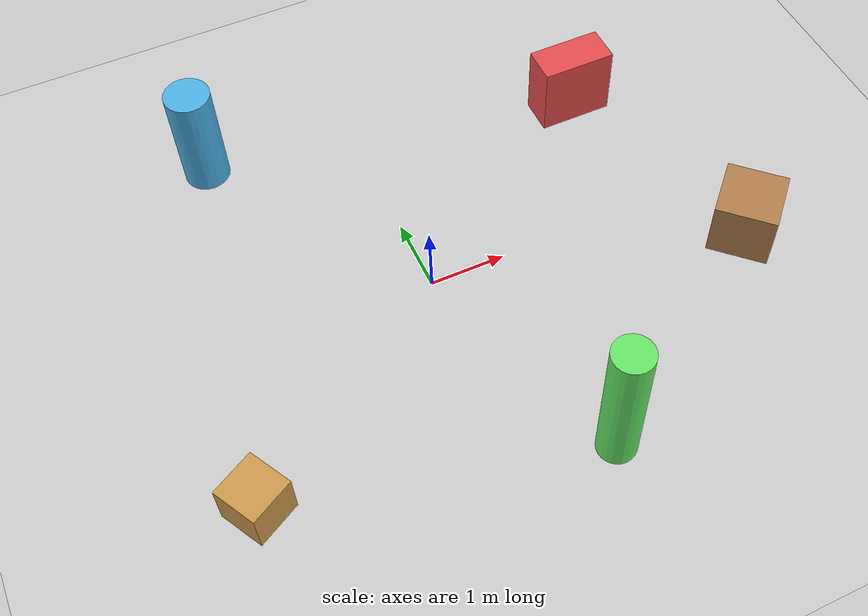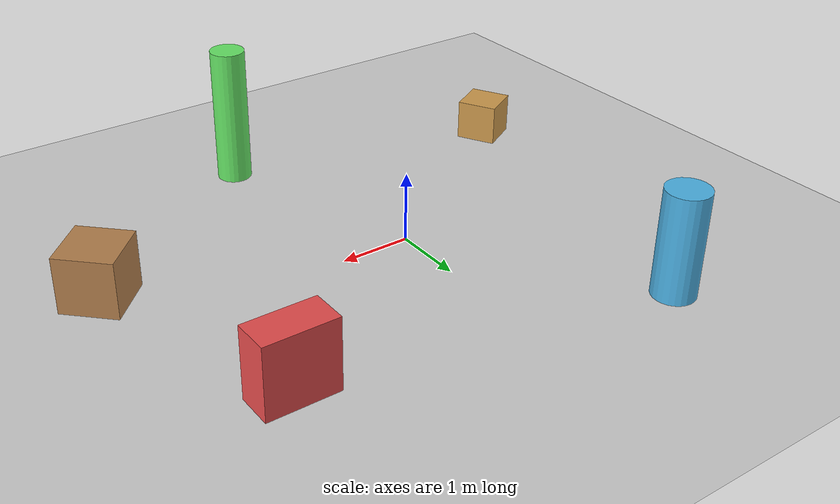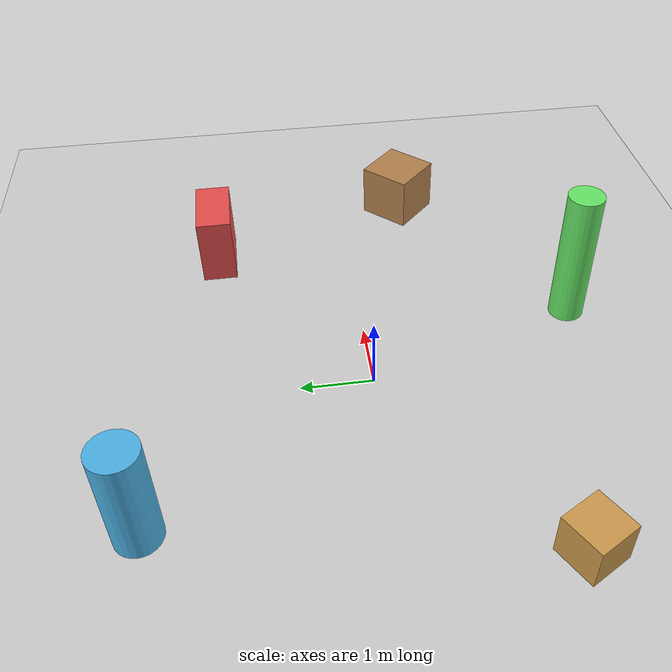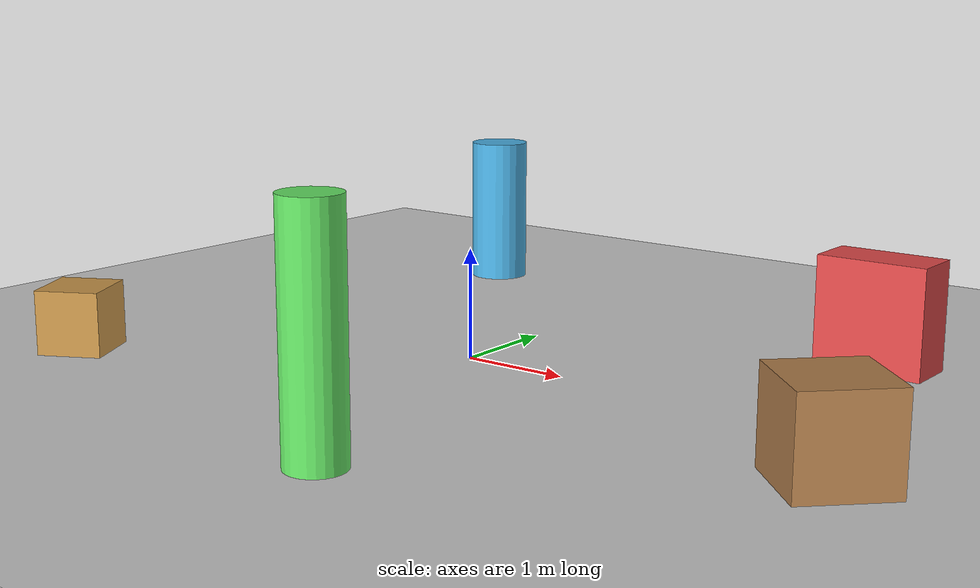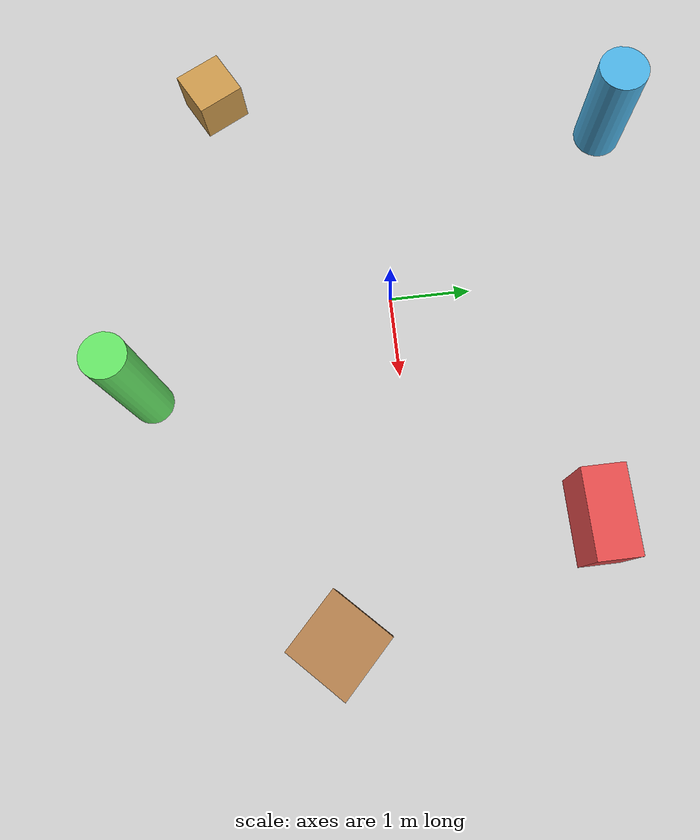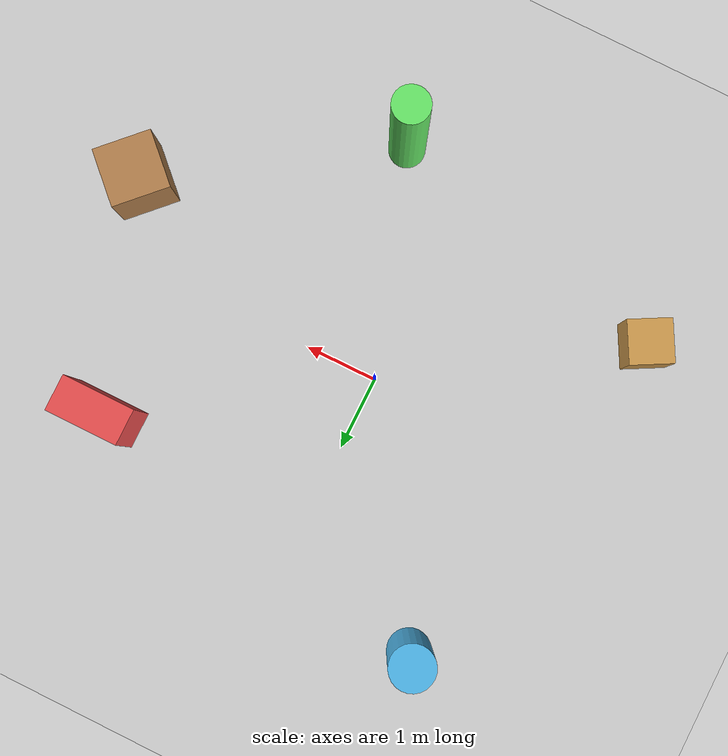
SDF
<sdf version="1.6">
 <world name="default">
  <include><uri>model://sun</uri></include>
  <include><uri>model://ground_plane</uri></include>
  <model name="obstacle_box_1">
   <static>true</static>
   <pose>3 2 0.5 0 0 0</pose>
   <link name="link">
    <collision name="collision"><geometry><box><size>1.0 0.5 1.0</size></box></geometry></collision>
    <visual name="visual">
     <geometry><box><size>1.0 0.5 1.0</size></box></geometry>
     <material><ambient>0.8 0.2 0.2 1</ambient><diffuse>0.9 0.3 0.3 1</diffuse></material>
    </visual>
   </link>
  </model>
  <model name="obstacle_cylinder_1">
   <static>true</static>
   <pose>-2 3 0.75 0 0 0</pose>
   <link name="link">
    <collision name="collision">
     <geometry><cylinder><radius>0.3</radius><length>1.5</length></cylinder></geometry>
    </collision>
    <visual name="visual">
     <geometry><cylinder><radius>0.3</radius><length>1.5</length></cylinder></geometry>
     <material><ambient>0.2 0.6 0.8 1</ambient><diffuse>0.3 0.7 0.9 1</diffuse></material>
    </visual>
   </link>
  </model>
  <model name="obstacle_box_2">
   <static>true</static>
   <pose>-3 -2 0.3 0 0 0.5</pose>
   <link name="link">
    <collision name="collision"><geometry><box><size>0.6 0.6 0.6</size></box></geometry></collision>
    <visual name="visual">
     <geometry><box><size>0.6 0.6 0.6</size></box></geometry>
     <material><ambient>0.7 0.5 0.2 1</ambient><diffuse>0.8 0.6 0.3 1</diffuse></material>
    </visual>
   </link>
  </model>
  <model name="obstacle_cylinder_2">
   <static>true</static>
   <pose>1 -3 1.0 0 0 0</pose>
   <link name="link">
    <collision name="collision">
     <geometry><cylinder><radius>0.25</radius><length>2.0</length></cylinder></geometry>
    </collision>
    <visual name="visual">
     <geometry><cylinder><radius>0.25</radius><length>2.0</length></cylinder></geometry>
     <material><ambient>0.3 0.8 0.3 1</ambient><diffuse>0.4 0.9 0.4 1</diffuse></material>
    </visual>
   </link>
  </model>
  <model name="obstacle_box_3">
   <static>true</static>
   <pose>4 -1 0.4 0 0 0.8</pose>
   <link name="link">
    <collision name="collision"><geometry><box><size>0.8 0.8 0.8</size></box></geometry></collision>
    <visual name="visual">
     <geometry><box><size>0.8 0.8 0.8</size></box></geometry>
     <material><ambient>0.6 0.4 0.2 1</ambient><diffuse>0.7 0.5 0.3 1</diffuse></material>
    </visual>
   </link>
  </model>
  <physics type="ode">
   <max_step_size>0.004</max_step_size>
   <real_time_update_rate>250</real_time_update_rate>
  </physics>
 </world>
</sdf>
